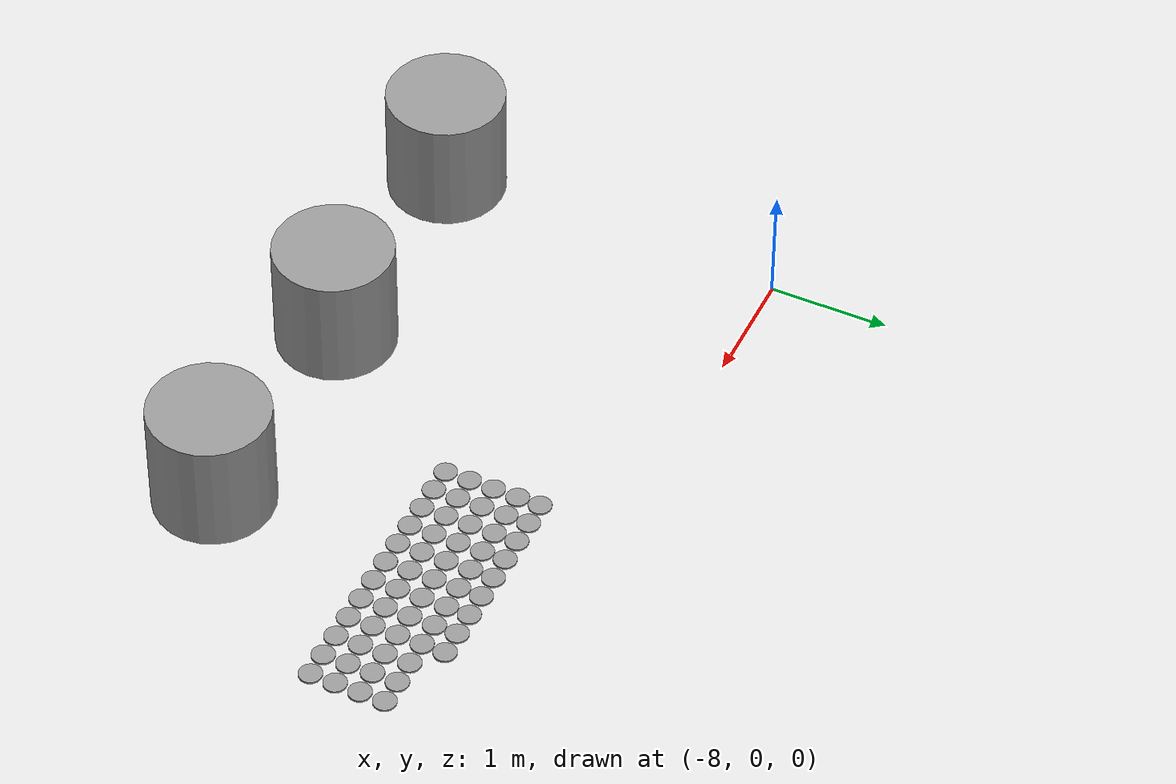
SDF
<sdf version="1.6">
 <world name="default">
  <model name="unit_cylinder_clone_500">
   <pose>-5 -1.5 0.008117 0 -0 0</pose>
   <link name="link">
    <inertial>
     <mass>1</mass>
     <inertia><ixx>0.145833</ixx><ixy>0</ixy><ixz>0</ixz><iyy>0.145833</iyy><iyz>0</iyz><izz>0.125</izz></inertia>
    </inertial>
    <collision name="collision">
     <geometry><cylinder><radius>0.0950718</radius><length>0.0162339</length></cylinder></geometry>
     <max_contacts>5</max_contacts>
    </collision>
    <visual name="visual">
     <geometry><cylinder><radius>0.0950718</radius><length>0.0162339</length></cylinder></geometry>
     <material>
      <script><name>Gazebo/Grey</name><uri>file://media/materials/scripts/gazebo.material</uri></script>
     </material>
    </visual>
   </link>
  </model>
  <model name="unit_cylinder_clone_501">
   <pose>-5 -1.29 0.008117 0 -0 0</pose>
   <link name="link">
    <inertial>
     <mass>1</mass>
     <inertia><ixx>0.145833</ixx><ixy>0</ixy><ixz>0</ixz><iyy>0.145833</iyy><iyz>0</iyz><izz>0.125</izz></inertia>
    </inertial>
    <collision name="collision">
     <geometry><cylinder><radius>0.0950718</radius><length>0.0162339</length></cylinder></geometry>
     <max_contacts>5</max_contacts>
    </collision>
    <visual name="visual">
     <geometry><cylinder><radius>0.0950718</radius><length>0.0162339</length></cylinder></geometry>
     <material>
      <script><name>Gazebo/Grey</name><uri>file://media/materials/scripts/gazebo.material</uri></script>
     </material>
    </visual>
   </link>
  </model>
  <model name="unit_cylinder_clone_502">
   <pose>-5 -1.08 0.008117 0 -0 0</pose>
   <link name="link">
    <inertial>
     <mass>1</mass>
     <inertia><ixx>0.145833</ixx><ixy>0</ixy><ixz>0</ixz><iyy>0.145833</iyy><iyz>0</iyz><izz>0.125</izz></inertia>
    </inertial>
    <collision name="collision">
     <geometry><cylinder><radius>0.0950718</radius><length>0.0162339</length></cylinder></geometry>
     <max_contacts>5</max_contacts>
    </collision>
    <visual name="visual">
     <geometry><cylinder><radius>0.0950718</radius><length>0.0162339</length></cylinder></geometry>
     <material>
      <script><name>Gazebo/Grey</name><uri>file://media/materials/scripts/gazebo.material</uri></script>
     </material>
    </visual>
   </link>
  </model>
  <model name="unit_cylinder_clone_503">
   <pose>-5 -0.87 0.008117 0 -0 0</pose>
   <link name="link">
    <inertial>
     <mass>1</mass>
     <inertia><ixx>0.145833</ixx><ixy>0</ixy><ixz>0</ixz><iyy>0.145833</iyy><iyz>0</iyz><izz>0.125</izz></inertia>
    </inertial>
    <collision name="collision">
     <geometry><cylinder><radius>0.0950718</radius><length>0.0162339</length></cylinder></geometry>
     <max_contacts>5</max_contacts>
    </collision>
    <visual name="visual">
     <geometry><cylinder><radius>0.0950718</radius><length>0.0162339</length></cylinder></geometry>
     <material>
      <script><name>Gazebo/Grey</name><uri>file://media/materials/scripts/gazebo.material</uri></script>
     </material>
    </visual>
   </link>
  </model>
  <model name="unit_cylinder_clone_504">
   <pose>-5 -0.675077 0.008117 -0 -0 -0</pose>
   <link name="link">
    <inertial>
     <mass>1</mass>
     <inertia><ixx>0.145833</ixx><ixy>0</ixy><ixz>0</ixz><iyy>0.145833</iyy><iyz>0</iyz><izz>0.125</izz></inertia>
    </inertial>
    <collision name="collision">
     <geometry><cylinder><radius>0.0950718</radius><length>0.0162339</length></cylinder></geometry>
     <max_contacts>5</max_contacts>
    </collision>
    <visual name="visual">
     <geometry><cylinder><radius>0.0950718</radius><length>0.0162339</length></cylinder></geometry>
     <material>
      <script><name>Gazebo/Grey</name><uri>file://media/materials/scripts/gazebo.material</uri></script>
     </material>
    </visual>
   </link>
  </model>
  <model name="unit_cylinder_clone_505">
   <pose>-4.79 -1.5 0.008117 0 -0 0</pose>
   <link name="link">
    <inertial>
     <mass>1</mass>
     <inertia><ixx>0.145833</ixx><ixy>0</ixy><ixz>0</ixz><iyy>0.145833</iyy><iyz>0</iyz><izz>0.125</izz></inertia>
    </inertial>
    <collision name="collision">
     <geometry><cylinder><radius>0.0950718</radius><length>0.0162339</length></cylinder></geometry>
     <max_contacts>5</max_contacts>
    </collision>
    <visual name="visual">
     <geometry><cylinder><radius>0.0950718</radius><length>0.0162339</length></cylinder></geometry>
     <material>
      <script><name>Gazebo/Grey</name><uri>file://media/materials/scripts/gazebo.material</uri></script>
     </material>
    </visual>
   </link>
  </model>
  <model name="unit_cylinder_clone_506">
   <pose>-4.79 -1.29 0.008117 0 -0 0</pose>
   <link name="link">
    <inertial>
     <mass>1</mass>
     <inertia><ixx>0.145833</ixx><ixy>0</ixy><ixz>0</ixz><iyy>0.145833</iyy><iyz>0</iyz><izz>0.125</izz></inertia>
    </inertial>
    <collision name="collision">
     <geometry><cylinder><radius>0.0950718</radius><length>0.0162339</length></cylinder></geometry>
     <max_contacts>5</max_contacts>
    </collision>
    <visual name="visual">
     <geometry><cylinder><radius>0.0950718</radius><length>0.0162339</length></cylinder></geometry>
     <material>
      <script><name>Gazebo/Grey</name><uri>file://media/materials/scripts/gazebo.material</uri></script>
     </material>
    </visual>
   </link>
  </model>
  <model name="unit_cylinder_clone_507">
   <pose>-4.79 -1.08 0.008117 0 -0 0</pose>
   <link name="link">
    <inertial>
     <mass>1</mass>
     <inertia><ixx>0.145833</ixx><ixy>0</ixy><ixz>0</ixz><iyy>0.145833</iyy><iyz>0</iyz><izz>0.125</izz></inertia>
    </inertial>
    <collision name="collision">
     <geometry><cylinder><radius>0.0950718</radius><length>0.0162339</length></cylinder></geometry>
     <max_contacts>5</max_contacts>
    </collision>
    <visual name="visual">
     <geometry><cylinder><radius>0.0950718</radius><length>0.0162339</length></cylinder></geometry>
     <material>
      <script><name>Gazebo/Grey</name><uri>file://media/materials/scripts/gazebo.material</uri></script>
     </material>
    </visual>
   </link>
  </model>
  <model name="unit_cylinder_clone_508">
   <pose>-4.79 -0.87 0.008117 0 -0 0</pose>
   <link name="link">
    <inertial>
     <mass>1</mass>
     <inertia><ixx>0.145833</ixx><ixy>0</ixy><ixz>0</ixz><iyy>0.145833</iyy><iyz>0</iyz><izz>0.125</izz></inertia>
    </inertial>
    <collision name="collision">
     <geometry><cylinder><radius>0.0950718</radius><length>0.0162339</length></cylinder></geometry>
     <max_contacts>5</max_contacts>
    </collision>
    <visual name="visual">
     <geometry><cylinder><radius>0.0950718</radius><length>0.0162339</length></cylinder></geometry>
     <material>
      <script><name>Gazebo/Grey</name><uri>file://media/materials/scripts/gazebo.material</uri></script>
     </material>
    </visual>
   </link>
  </model>
  <model name="unit_cylinder_clone_509">
   <pose>-4.79 -0.675077 0.008117 -0 -0 -0</pose>
   <link name="link">
    <inertial>
     <mass>1</mass>
     <inertia><ixx>0.145833</ixx><ixy>0</ixy><ixz>0</ixz><iyy>0.145833</iyy><iyz>0</iyz><izz>0.125</izz></inertia>
    </inertial>
    <collision name="collision">
     <geometry><cylinder><radius>0.0950718</radius><length>0.0162339</length></cylinder></geometry>
     <max_contacts>5</max_contacts>
    </collision>
    <visual name="visual">
     <geometry><cylinder><radius>0.0950718</radius><length>0.0162339</length></cylinder></geometry>
     <material>
      <script><name>Gazebo/Grey</name><uri>file://media/materials/scripts/gazebo.material</uri></script>
     </material>
    </visual>
   </link>
  </model>
  <model name="unit_cylinder_clone_510">
   <pose>-4.58 -1.5 0.008117 0 -0 0</pose>
   <link name="link">
    <inertial>
     <mass>1</mass>
     <inertia><ixx>0.145833</ixx><ixy>0</ixy><ixz>0</ixz><iyy>0.145833</iyy><iyz>0</iyz><izz>0.125</izz></inertia>
    </inertial>
    <collision name="collision">
     <geometry><cylinder><radius>0.0950718</radius><length>0.0162339</length></cylinder></geometry>
     <max_contacts>5</max_contacts>
    </collision>
    <visual name="visual">
     <geometry><cylinder><radius>0.0950718</radius><length>0.0162339</length></cylinder></geometry>
     <material>
      <script><name>Gazebo/Grey</name><uri>file://media/materials/scripts/gazebo.material</uri></script>
     </material>
    </visual>
   </link>
  </model>
  <model name="unit_cylinder_clone_511">
   <pose>-4.58 -1.29 0.008117 0 -0 0</pose>
   <link name="link">
    <inertial>
     <mass>1</mass>
     <inertia><ixx>0.145833</ixx><ixy>0</ixy><ixz>0</ixz><iyy>0.145833</iyy><iyz>0</iyz><izz>0.125</izz></inertia>
    </inertial>
    <collision name="collision">
     <geometry><cylinder><radius>0.0950718</radius><length>0.0162339</length></cylinder></geometry>
     <max_contacts>5</max_contacts>
    </collision>
    <visual name="visual">
     <geometry><cylinder><radius>0.0950718</radius><length>0.0162339</length></cylinder></geometry>
     <material>
      <script><name>Gazebo/Grey</name><uri>file://media/materials/scripts/gazebo.material</uri></script>
     </material>
    </visual>
   </link>
  </model>
  <model name="unit_cylinder_clone_512">
   <pose>-4.58 -1.08 0.008117 0 -0 0</pose>
   <link name="link">
    <inertial>
     <mass>1</mass>
     <inertia><ixx>0.145833</ixx><ixy>0</ixy><ixz>0</ixz><iyy>0.145833</iyy><iyz>0</iyz><izz>0.125</izz></inertia>
    </inertial>
    <collision name="collision">
     <geometry><cylinder><radius>0.0950718</radius><length>0.0162339</length></cylinder></geometry>
     <max_contacts>5</max_contacts>
    </collision>
    <visual name="visual">
     <geometry><cylinder><radius>0.0950718</radius><length>0.0162339</length></cylinder></geometry>
     <material>
      <script><name>Gazebo/Grey</name><uri>file://media/materials/scripts/gazebo.material</uri></script>
     </material>
    </visual>
   </link>
  </model>
  <model name="unit_cylinder_clone_513">
   <pose>-4.58 -0.87 0.008117 0 -0 0</pose>
   <link name="link">
    <inertial>
     <mass>1</mass>
     <inertia><ixx>0.145833</ixx><ixy>0</ixy><ixz>0</ixz><iyy>0.145833</iyy><iyz>0</iyz><izz>0.125</izz></inertia>
    </inertial>
    <collision name="collision">
     <geometry><cylinder><radius>0.0950718</radius><length>0.0162339</length></cylinder></geometry>
     <max_contacts>5</max_contacts>
    </collision>
    <visual name="visual">
     <geometry><cylinder><radius>0.0950718</radius><length>0.0162339</length></cylinder></geometry>
     <material>
      <script><name>Gazebo/Grey</name><uri>file://media/materials/scripts/gazebo.material</uri></script>
     </material>
    </visual>
   </link>
  </model>
  <model name="unit_cylinder_clone_514">
   <pose>-4.58 -0.675077 0.008117 -0 -0 -0</pose>
   <link name="link">
    <inertial>
     <mass>1</mass>
     <inertia><ixx>0.145833</ixx><ixy>0</ixy><ixz>0</ixz><iyy>0.145833</iyy><iyz>0</iyz><izz>0.125</izz></inertia>
    </inertial>
    <collision name="collision">
     <geometry><cylinder><radius>0.0950718</radius><length>0.0162339</length></cylinder></geometry>
     <max_contacts>5</max_contacts>
    </collision>
    <visual name="visual">
     <geometry><cylinder><radius>0.0950718</radius><length>0.0162339</length></cylinder></geometry>
     <material>
      <script><name>Gazebo/Grey</name><uri>file://media/materials/scripts/gazebo.material</uri></script>
     </material>
    </visual>
   </link>
  </model>
  <model name="unit_cylinder_clone_515">
   <pose>-4.37 -1.5 0.008117 0 -0 0</pose>
   <link name="link">
    <inertial>
     <mass>1</mass>
     <inertia><ixx>0.145833</ixx><ixy>0</ixy><ixz>0</ixz><iyy>0.145833</iyy><iyz>0</iyz><izz>0.125</izz></inertia>
    </inertial>
    <collision name="collision">
     <geometry><cylinder><radius>0.0950718</radius><length>0.0162339</length></cylinder></geometry>
     <max_contacts>5</max_contacts>
    </collision>
    <visual name="visual">
     <geometry><cylinder><radius>0.0950718</radius><length>0.0162339</length></cylinder></geometry>
     <material>
      <script><name>Gazebo/Grey</name><uri>file://media/materials/scripts/gazebo.material</uri></script>
     </material>
    </visual>
   </link>
  </model>
  <model name="unit_cylinder_clone_516">
   <pose>-4.37 -1.29 0.008117 0 -0 0</pose>
   <link name="link">
    <inertial>
     <mass>1</mass>
     <inertia><ixx>0.145833</ixx><ixy>0</ixy><ixz>0</ixz><iyy>0.145833</iyy><iyz>0</iyz><izz>0.125</izz></inertia>
    </inertial>
    <collision name="collision">
     <geometry><cylinder><radius>0.0950718</radius><length>0.0162339</length></cylinder></geometry>
     <max_contacts>5</max_contacts>
    </collision>
    <visual name="visual">
     <geometry><cylinder><radius>0.0950718</radius><length>0.0162339</length></cylinder></geometry>
     <material>
      <script><name>Gazebo/Grey</name><uri>file://media/materials/scripts/gazebo.material</uri></script>
     </material>
    </visual>
   </link>
  </model>
  <model name="unit_cylinder_clone_517">
   <pose>-4.37 -1.08 0.008117 0 -0 0</pose>
   <link name="link">
    <inertial>
     <mass>1</mass>
     <inertia><ixx>0.145833</ixx><ixy>0</ixy><ixz>0</ixz><iyy>0.145833</iyy><iyz>0</iyz><izz>0.125</izz></inertia>
    </inertial>
    <collision name="collision">
     <geometry><cylinder><radius>0.0950718</radius><length>0.0162339</length></cylinder></geometry>
     <max_contacts>5</max_contacts>
    </collision>
    <visual name="visual">
     <geometry><cylinder><radius>0.0950718</radius><length>0.0162339</length></cylinder></geometry>
     <material>
      <script><name>Gazebo/Grey</name><uri>file://media/materials/scripts/gazebo.material</uri></script>
     </material>
    </visual>
   </link>
  </model>
  <model name="unit_cylinder_clone_518">
   <pose>-4.37 -0.87 0.008117 0 -0 0</pose>
   <link name="link">
    <inertial>
     <mass>1</mass>
     <inertia><ixx>0.145833</ixx><ixy>0</ixy><ixz>0</ixz><iyy>0.145833</iyy><iyz>0</iyz><izz>0.125</izz></inertia>
    </inertial>
    <collision name="collision">
     <geometry><cylinder><radius>0.0950718</radius><length>0.0162339</length></cylinder></geometry>
     <max_contacts>5</max_contacts>
    </collision>
    <visual name="visual">
     <geometry><cylinder><radius>0.0950718</radius><length>0.0162339</length></cylinder></geometry>
     <material>
      <script><name>Gazebo/Grey</name><uri>file://media/materials/scripts/gazebo.material</uri></script>
     </material>
    </visual>
   </link>
  </model>
  <model name="unit_cylinder_clone_519">
   <pose>-4.37 -0.675077 0.008117 -0 -0 -0</pose>
   <link name="link">
    <inertial>
     <mass>1</mass>
     <inertia><ixx>0.145833</ixx><ixy>0</ixy><ixz>0</ixz><iyy>0.145833</iyy><iyz>0</iyz><izz>0.125</izz></inertia>
    </inertial>
    <collision name="collision">
     <geometry><cylinder><radius>0.0950718</radius><length>0.0162339</length></cylinder></geometry>
     <max_contacts>5</max_contacts>
    </collision>
    <visual name="visual">
     <geometry><cylinder><radius>0.0950718</radius><length>0.0162339</length></cylinder></geometry>
     <material>
      <script><name>Gazebo/Grey</name><uri>file://media/materials/scripts/gazebo.material</uri></script>
     </material>
    </visual>
   </link>
  </model>
  <model name="unit_cylinder_clone_520">
   <pose>-4.16 -1.5 0.008117 0 -0 0</pose>
   <link name="link">
    <inertial>
     <mass>1</mass>
     <inertia><ixx>0.145833</ixx><ixy>0</ixy><ixz>0</ixz><iyy>0.145833</iyy><iyz>0</iyz><izz>0.125</izz></inertia>
    </inertial>
    <collision name="collision">
     <geometry><cylinder><radius>0.0950718</radius><length>0.0162339</length></cylinder></geometry>
     <max_contacts>5</max_contacts>
    </collision>
    <visual name="visual">
     <geometry><cylinder><radius>0.0950718</radius><length>0.0162339</length></cylinder></geometry>
     <material>
      <script><name>Gazebo/Grey</name><uri>file://media/materials/scripts/gazebo.material</uri></script>
     </material>
    </visual>
   </link>
  </model>
  <model name="unit_cylinder_clone_521">
   <pose>-4.16 -1.29 0.008117 0 -0 0</pose>
   <link name="link">
    <inertial>
     <mass>1</mass>
     <inertia><ixx>0.145833</ixx><ixy>0</ixy><ixz>0</ixz><iyy>0.145833</iyy><iyz>0</iyz><izz>0.125</izz></inertia>
    </inertial>
    <collision name="collision">
     <geometry><cylinder><radius>0.0950718</radius><length>0.0162339</length></cylinder></geometry>
     <max_contacts>5</max_contacts>
    </collision>
    <visual name="visual">
     <geometry><cylinder><radius>0.0950718</radius><length>0.0162339</length></cylinder></geometry>
     <material>
      <script><name>Gazebo/Grey</name><uri>file://media/materials/scripts/gazebo.material</uri></script>
     </material>
    </visual>
   </link>
  </model>
  <model name="unit_cylinder_clone_522">
   <pose>-4.16 -1.08 0.008117 0 -0 0</pose>
   <link name="link">
    <inertial>
     <mass>1</mass>
     <inertia><ixx>0.145833</ixx><ixy>0</ixy><ixz>0</ixz><iyy>0.145833</iyy><iyz>0</iyz><izz>0.125</izz></inertia>
    </inertial>
    <collision name="collision">
     <geometry><cylinder><radius>0.0950718</radius><length>0.0162339</length></cylinder></geometry>
     <max_contacts>5</max_contacts>
    </collision>
    <visual name="visual">
     <geometry><cylinder><radius>0.0950718</radius><length>0.0162339</length></cylinder></geometry>
     <material>
      <script><name>Gazebo/Grey</name><uri>file://media/materials/scripts/gazebo.material</uri></script>
     </material>
    </visual>
   </link>
  </model>
  <model name="unit_cylinder_clone_523">
   <pose>-4.16 -0.87 0.008117 0 -0 0</pose>
   <link name="link">
    <inertial>
     <mass>1</mass>
     <inertia><ixx>0.145833</ixx><ixy>0</ixy><ixz>0</ixz><iyy>0.145833</iyy><iyz>0</iyz><izz>0.125</izz></inertia>
    </inertial>
    <collision name="collision">
     <geometry><cylinder><radius>0.0950718</radius><length>0.0162339</length></cylinder></geometry>
     <max_contacts>5</max_contacts>
    </collision>
    <visual name="visual">
     <geometry><cylinder><radius>0.0950718</radius><length>0.0162339</length></cylinder></geometry>
     <material>
      <script><name>Gazebo/Grey</name><uri>file://media/materials/scripts/gazebo.material</uri></script>
     </material>
    </visual>
   </link>
  </model>
  <model name="unit_cylinder_clone_524">
   <pose>-4.16 -0.675077 0.008117 -0 -0 -0</pose>
   <link name="link">
    <inertial>
     <mass>1</mass>
     <inertia><ixx>0.145833</ixx><ixy>0</ixy><ixz>0</ixz><iyy>0.145833</iyy><iyz>0</iyz><izz>0.125</izz></inertia>
    </inertial>
    <collision name="collision">
     <geometry><cylinder><radius>0.0950718</radius><length>0.0162339</length></cylinder></geometry>
     <max_contacts>5</max_contacts>
    </collision>
    <visual name="visual">
     <geometry><cylinder><radius>0.0950718</radius><length>0.0162339</length></cylinder></geometry>
     <material>
      <script><name>Gazebo/Grey</name><uri>file://media/materials/scripts/gazebo.material</uri></script>
     </material>
    </visual>
   </link>
  </model>
  <model name="unit_cylinder_clone_525">
   <pose>-3.95 -1.5 0.008117 0 -0 0</pose>
   <link name="link">
    <inertial>
     <mass>1</mass>
     <inertia><ixx>0.145833</ixx><ixy>0</ixy><ixz>0</ixz><iyy>0.145833</iyy><iyz>0</iyz><izz>0.125</izz></inertia>
    </inertial>
    <collision name="collision">
     <geometry><cylinder><radius>0.0950718</radius><length>0.0162339</length></cylinder></geometry>
     <max_contacts>5</max_contacts>
    </collision>
    <visual name="visual">
     <geometry><cylinder><radius>0.0950718</radius><length>0.0162339</length></cylinder></geometry>
     <material>
      <script><name>Gazebo/Grey</name><uri>file://media/materials/scripts/gazebo.material</uri></script>
     </material>
    </visual>
   </link>
  </model>
  <model name="unit_cylinder_clone_526">
   <pose>-3.95 -1.29 0.008117 0 -0 0</pose>
   <link name="link">
    <inertial>
     <mass>1</mass>
     <inertia><ixx>0.145833</ixx><ixy>0</ixy><ixz>0</ixz><iyy>0.145833</iyy><iyz>0</iyz><izz>0.125</izz></inertia>
    </inertial>
    <collision name="collision">
     <geometry><cylinder><radius>0.0950718</radius><length>0.0162339</length></cylinder></geometry>
     <max_contacts>5</max_contacts>
    </collision>
    <visual name="visual">
     <geometry><cylinder><radius>0.0950718</radius><length>0.0162339</length></cylinder></geometry>
     <material>
      <script><name>Gazebo/Grey</name><uri>file://media/materials/scripts/gazebo.material</uri></script>
     </material>
    </visual>
   </link>
  </model>
  <model name="unit_cylinder_clone_527">
   <pose>-3.95 -1.08 0.008117 0 -0 0</pose>
   <link name="link">
    <inertial>
     <mass>1</mass>
     <inertia><ixx>0.145833</ixx><ixy>0</ixy><ixz>0</ixz><iyy>0.145833</iyy><iyz>0</iyz><izz>0.125</izz></inertia>
    </inertial>
    <collision name="collision">
     <geometry><cylinder><radius>0.0950718</radius><length>0.0162339</length></cylinder></geometry>
     <max_contacts>5</max_contacts>
    </collision>
    <visual name="visual">
     <geometry><cylinder><radius>0.0950718</radius><length>0.0162339</length></cylinder></geometry>
     <material>
      <script><name>Gazebo/Grey</name><uri>file://media/materials/scripts/gazebo.material</uri></script>
     </material>
    </visual>
   </link>
  </model>
  <model name="unit_cylinder_clone_528">
   <pose>-3.95 -0.87 0.008117 0 -0 0</pose>
   <link name="link">
    <inertial>
     <mass>1</mass>
     <inertia><ixx>0.145833</ixx><ixy>0</ixy><ixz>0</ixz><iyy>0.145833</iyy><iyz>0</iyz><izz>0.125</izz></inertia>
    </inertial>
    <collision name="collision">
     <geometry><cylinder><radius>0.0950718</radius><length>0.0162339</length></cylinder></geometry>
     <max_contacts>5</max_contacts>
    </collision>
    <visual name="visual">
     <geometry><cylinder><radius>0.0950718</radius><length>0.0162339</length></cylinder></geometry>
     <material>
      <script><name>Gazebo/Grey</name><uri>file://media/materials/scripts/gazebo.material</uri></script>
     </material>
    </visual>
   </link>
  </model>
  <model name="unit_cylinder_clone_529">
   <pose>-3.95 -0.675077 0.008117 -0 -0 -0</pose>
   <link name="link">
    <inertial>
     <mass>1</mass>
     <inertia><ixx>0.145833</ixx><ixy>0</ixy><ixz>0</ixz><iyy>0.145833</iyy><iyz>0</iyz><izz>0.125</izz></inertia>
    </inertial>
    <collision name="collision">
     <geometry><cylinder><radius>0.0950718</radius><length>0.0162339</length></cylinder></geometry>
     <max_contacts>5</max_contacts>
    </collision>
    <visual name="visual">
     <geometry><cylinder><radius>0.0950718</radius><length>0.0162339</length></cylinder></geometry>
     <material>
      <script><name>Gazebo/Grey</name><uri>file://media/materials/scripts/gazebo.material</uri></script>
     </material>
    </visual>
   </link>
  </model>
  <model name="unit_cylinder_clone_530">
   <pose>-3.74 -1.5 0.008117 0 -0 0</pose>
   <link name="link">
    <inertial>
     <mass>1</mass>
     <inertia><ixx>0.145833</ixx><ixy>0</ixy><ixz>0</ixz><iyy>0.145833</iyy><iyz>0</iyz><izz>0.125</izz></inertia>
    </inertial>
    <collision name="collision">
     <geometry><cylinder><radius>0.0950718</radius><length>0.0162339</length></cylinder></geometry>
     <max_contacts>5</max_contacts>
    </collision>
    <visual name="visual">
     <geometry><cylinder><radius>0.0950718</radius><length>0.0162339</length></cylinder></geometry>
     <material>
      <script><name>Gazebo/Grey</name><uri>file://media/materials/scripts/gazebo.material</uri></script>
     </material>
    </visual>
   </link>
  </model>
  <model name="unit_cylinder_clone_531">
   <pose>-3.74 -1.29 0.008117 0 -0 0</pose>
   <link name="link">
    <inertial>
     <mass>1</mass>
     <inertia><ixx>0.145833</ixx><ixy>0</ixy><ixz>0</ixz><iyy>0.145833</iyy><iyz>0</iyz><izz>0.125</izz></inertia>
    </inertial>
    <collision name="collision">
     <geometry><cylinder><radius>0.0950718</radius><length>0.0162339</length></cylinder></geometry>
     <max_contacts>5</max_contacts>
    </collision>
    <visual name="visual">
     <geometry><cylinder><radius>0.0950718</radius><length>0.0162339</length></cylinder></geometry>
     <material>
      <script><name>Gazebo/Grey</name><uri>file://media/materials/scripts/gazebo.material</uri></script>
     </material>
    </visual>
   </link>
  </model>
  <model name="unit_cylinder_clone_532">
   <pose>-3.74 -1.08 0.008117 0 -0 0</pose>
   <link name="link">
    <inertial>
     <mass>1</mass>
     <inertia><ixx>0.145833</ixx><ixy>0</ixy><ixz>0</ixz><iyy>0.145833</iyy><iyz>0</iyz><izz>0.125</izz></inertia>
    </inertial>
    <collision name="collision">
     <geometry><cylinder><radius>0.0950718</radius><length>0.0162339</length></cylinder></geometry>
     <max_contacts>5</max_contacts>
    </collision>
    <visual name="visual">
     <geometry><cylinder><radius>0.0950718</radius><length>0.0162339</length></cylinder></geometry>
     <material>
      <script><name>Gazebo/Grey</name><uri>file://media/materials/scripts/gazebo.material</uri></script>
     </material>
    </visual>
   </link>
  </model>
  <model name="unit_cylinder_clone_533">
   <pose>-3.74 -0.87 0.008117 0 -0 0</pose>
   <link name="link">
    <inertial>
     <mass>1</mass>
     <inertia><ixx>0.145833</ixx><ixy>0</ixy><ixz>0</ixz><iyy>0.145833</iyy><iyz>0</iyz><izz>0.125</izz></inertia>
    </inertial>
    <collision name="collision">
     <geometry><cylinder><radius>0.0950718</radius><length>0.0162339</length></cylinder></geometry>
     <max_contacts>5</max_contacts>
    </collision>
    <visual name="visual">
     <geometry><cylinder><radius>0.0950718</radius><length>0.0162339</length></cylinder></geometry>
     <material>
      <script><name>Gazebo/Grey</name><uri>file://media/materials/scripts/gazebo.material</uri></script>
     </material>
    </visual>
   </link>
  </model>
  <model name="unit_cylinder_clone_534">
   <pose>-3.74 -0.675077 0.008117 -0 -0 -0</pose>
   <link name="link">
    <inertial>
     <mass>1</mass>
     <inertia><ixx>0.145833</ixx><ixy>0</ixy><ixz>0</ixz><iyy>0.145833</iyy><iyz>0</iyz><izz>0.125</izz></inertia>
    </inertial>
    <collision name="collision">
     <geometry><cylinder><radius>0.0950718</radius><length>0.0162339</length></cylinder></geometry>
     <max_contacts>5</max_contacts>
    </collision>
    <visual name="visual">
     <geometry><cylinder><radius>0.0950718</radius><length>0.0162339</length></cylinder></geometry>
     <material>
      <script><name>Gazebo/Grey</name><uri>file://media/materials/scripts/gazebo.material</uri></script>
     </material>
    </visual>
   </link>
  </model>
  <model name="unit_cylinder_clone_535">
   <pose>-3.53 -1.5 0.008117 0 -0 0</pose>
   <link name="link">
    <inertial>
     <mass>1</mass>
     <inertia><ixx>0.145833</ixx><ixy>0</ixy><ixz>0</ixz><iyy>0.145833</iyy><iyz>0</iyz><izz>0.125</izz></inertia>
    </inertial>
    <collision name="collision">
     <geometry><cylinder><radius>0.0950718</radius><length>0.0162339</length></cylinder></geometry>
     <max_contacts>5</max_contacts>
    </collision>
    <visual name="visual">
     <geometry><cylinder><radius>0.0950718</radius><length>0.0162339</length></cylinder></geometry>
     <material>
      <script><name>Gazebo/Grey</name><uri>file://media/materials/scripts/gazebo.material</uri></script>
     </material>
    </visual>
   </link>
  </model>
  <model name="unit_cylinder_clone_536">
   <pose>-3.53 -1.29 0.008117 0 -0 0</pose>
   <link name="link">
    <inertial>
     <mass>1</mass>
     <inertia><ixx>0.145833</ixx><ixy>0</ixy><ixz>0</ixz><iyy>0.145833</iyy><iyz>0</iyz><izz>0.125</izz></inertia>
    </inertial>
    <collision name="collision">
     <geometry><cylinder><radius>0.0950718</radius><length>0.0162339</length></cylinder></geometry>
     <max_contacts>5</max_contacts>
    </collision>
    <visual name="visual">
     <geometry><cylinder><radius>0.0950718</radius><length>0.0162339</length></cylinder></geometry>
     <material>
      <script><name>Gazebo/Grey</name><uri>file://media/materials/scripts/gazebo.material</uri></script>
     </material>
    </visual>
   </link>
  </model>
  <model name="unit_cylinder_clone_537">
   <pose>-3.53 -1.08 0.008117 0 -0 0</pose>
   <link name="link">
    <inertial>
     <mass>1</mass>
     <inertia><ixx>0.145833</ixx><ixy>0</ixy><ixz>0</ixz><iyy>0.145833</iyy><iyz>0</iyz><izz>0.125</izz></inertia>
    </inertial>
    <collision name="collision">
     <geometry><cylinder><radius>0.0950718</radius><length>0.0162339</length></cylinder></geometry>
     <max_contacts>5</max_contacts>
    </collision>
    <visual name="visual">
     <geometry><cylinder><radius>0.0950718</radius><length>0.0162339</length></cylinder></geometry>
     <material>
      <script><name>Gazebo/Grey</name><uri>file://media/materials/scripts/gazebo.material</uri></script>
     </material>
    </visual>
   </link>
  </model>
  <model name="unit_cylinder_clone_538">
   <pose>-3.53 -0.87 0.008117 0 -0 0</pose>
   <link name="link">
    <inertial>
     <mass>1</mass>
     <inertia><ixx>0.145833</ixx><ixy>0</ixy><ixz>0</ixz><iyy>0.145833</iyy><iyz>0</iyz><izz>0.125</izz></inertia>
    </inertial>
    <collision name="collision">
     <geometry><cylinder><radius>0.0950718</radius><length>0.0162339</length></cylinder></geometry>
     <max_contacts>5</max_contacts>
    </collision>
    <visual name="visual">
     <geometry><cylinder><radius>0.0950718</radius><length>0.0162339</length></cylinder></geometry>
     <material>
      <script><name>Gazebo/Grey</name><uri>file://media/materials/scripts/gazebo.material</uri></script>
     </material>
    </visual>
   </link>
  </model>
  <model name="unit_cylinder_clone_539">
   <pose>-3.53 -0.675077 0.008117 -0 -0 -0</pose>
   <link name="link">
    <inertial>
     <mass>1</mass>
     <inertia><ixx>0.145833</ixx><ixy>0</ixy><ixz>0</ixz><iyy>0.145833</iyy><iyz>0</iyz><izz>0.125</izz></inertia>
    </inertial>
    <collision name="collision">
     <geometry><cylinder><radius>0.0950718</radius><length>0.0162339</length></cylinder></geometry>
     <max_contacts>5</max_contacts>
    </collision>
    <visual name="visual">
     <geometry><cylinder><radius>0.0950718</radius><length>0.0162339</length></cylinder></geometry>
     <material>
      <script><name>Gazebo/Grey</name><uri>file://media/materials/scripts/gazebo.material</uri></script>
     </material>
    </visual>
   </link>
  </model>
  <model name="unit_cylinder_clone_540">
   <pose>-3.32 -1.5 0.008117 0 -0 0</pose>
   <link name="link">
    <inertial>
     <mass>1</mass>
     <inertia><ixx>0.145833</ixx><ixy>0</ixy><ixz>0</ixz><iyy>0.145833</iyy><iyz>0</iyz><izz>0.125</izz></inertia>
    </inertial>
    <collision name="collision">
     <geometry><cylinder><radius>0.0950718</radius><length>0.0162339</length></cylinder></geometry>
     <max_contacts>5</max_contacts>
    </collision>
    <visual name="visual">
     <geometry><cylinder><radius>0.0950718</radius><length>0.0162339</length></cylinder></geometry>
     <material>
      <script><name>Gazebo/Grey</name><uri>file://media/materials/scripts/gazebo.material</uri></script>
     </material>
    </visual>
   </link>
  </model>
  <model name="unit_cylinder_clone_541">
   <pose>-3.32 -1.29 0.008117 0 -0 0</pose>
   <link name="link">
    <inertial>
     <mass>1</mass>
     <inertia><ixx>0.145833</ixx><ixy>0</ixy><ixz>0</ixz><iyy>0.145833</iyy><iyz>0</iyz><izz>0.125</izz></inertia>
    </inertial>
    <collision name="collision">
     <geometry><cylinder><radius>0.0950718</radius><length>0.0162339</length></cylinder></geometry>
     <max_contacts>5</max_contacts>
    </collision>
    <visual name="visual">
     <geometry><cylinder><radius>0.0950718</radius><length>0.0162339</length></cylinder></geometry>
     <material>
      <script><name>Gazebo/Grey</name><uri>file://media/materials/scripts/gazebo.material</uri></script>
     </material>
    </visual>
   </link>
  </model>
  <model name="unit_cylinder_clone_542">
   <pose>-3.32 -1.08 0.008117 0 -0 0</pose>
   <link name="link">
    <inertial>
     <mass>1</mass>
     <inertia><ixx>0.145833</ixx><ixy>0</ixy><ixz>0</ixz><iyy>0.145833</iyy><iyz>0</iyz><izz>0.125</izz></inertia>
    </inertial>
    <collision name="collision">
     <geometry><cylinder><radius>0.0950718</radius><length>0.0162339</length></cylinder></geometry>
     <max_contacts>5</max_contacts>
    </collision>
    <visual name="visual">
     <geometry><cylinder><radius>0.0950718</radius><length>0.0162339</length></cylinder></geometry>
     <material>
      <script><name>Gazebo/Grey</name><uri>file://media/materials/scripts/gazebo.material</uri></script>
     </material>
    </visual>
   </link>
  </model>
  <model name="unit_cylinder_clone_543">
   <pose>-3.32 -0.87 0.008117 0 -0 0</pose>
   <link name="link">
    <inertial>
     <mass>1</mass>
     <inertia><ixx>0.145833</ixx><ixy>0</ixy><ixz>0</ixz><iyy>0.145833</iyy><iyz>0</iyz><izz>0.125</izz></inertia>
    </inertial>
    <collision name="collision">
     <geometry><cylinder><radius>0.0950718</radius><length>0.0162339</length></cylinder></geometry>
     <max_contacts>5</max_contacts>
    </collision>
    <visual name="visual">
     <geometry><cylinder><radius>0.0950718</radius><length>0.0162339</length></cylinder></geometry>
     <material>
      <script><name>Gazebo/Grey</name><uri>file://media/materials/scripts/gazebo.material</uri></script>
     </material>
    </visual>
   </link>
  </model>
  <model name="unit_cylinder_clone_544">
   <pose>-3.32 -0.675077 0.008117 -0 -0 -0</pose>
   <link name="link">
    <inertial>
     <mass>1</mass>
     <inertia><ixx>0.145833</ixx><ixy>0</ixy><ixz>0</ixz><iyy>0.145833</iyy><iyz>0</iyz><izz>0.125</izz></inertia>
    </inertial>
    <collision name="collision">
     <geometry><cylinder><radius>0.0950718</radius><length>0.0162339</length></cylinder></geometry>
     <max_contacts>5</max_contacts>
    </collision>
    <visual name="visual">
     <geometry><cylinder><radius>0.0950718</radius><length>0.0162339</length></cylinder></geometry>
     <material>
      <script><name>Gazebo/Grey</name><uri>file://media/materials/scripts/gazebo.material</uri></script>
     </material>
    </visual>
   </link>
  </model>
  <model name="unit_cylinder_clone_545">
   <pose>-3.11 -1.5 0.008117 0 -0 0</pose>
   <link name="link">
    <inertial>
     <mass>1</mass>
     <inertia><ixx>0.145833</ixx><ixy>0</ixy><ixz>0</ixz><iyy>0.145833</iyy><iyz>0</iyz><izz>0.125</izz></inertia>
    </inertial>
    <collision name="collision">
     <geometry><cylinder><radius>0.0950718</radius><length>0.0162339</length></cylinder></geometry>
     <max_contacts>5</max_contacts>
    </collision>
    <visual name="visual">
     <geometry><cylinder><radius>0.0950718</radius><length>0.0162339</length></cylinder></geometry>
     <material>
      <script><name>Gazebo/Grey</name><uri>file://media/materials/scripts/gazebo.material</uri></script>
     </material>
    </visual>
   </link>
  </model>
  <model name="unit_cylinder_clone_546">
   <pose>-3.11 -1.29 0.008117 0 -0 0</pose>
   <link name="link">
    <inertial>
     <mass>1</mass>
     <inertia><ixx>0.145833</ixx><ixy>0</ixy><ixz>0</ixz><iyy>0.145833</iyy><iyz>0</iyz><izz>0.125</izz></inertia>
    </inertial>
    <collision name="collision">
     <geometry><cylinder><radius>0.0950718</radius><length>0.0162339</length></cylinder></geometry>
     <max_contacts>5</max_contacts>
    </collision>
    <visual name="visual">
     <geometry><cylinder><radius>0.0950718</radius><length>0.0162339</length></cylinder></geometry>
     <material>
      <script><name>Gazebo/Grey</name><uri>file://media/materials/scripts/gazebo.material</uri></script>
     </material>
    </visual>
   </link>
  </model>
  <model name="unit_cylinder_clone_547">
   <pose>-3.11 -1.08 0.008117 0 -0 0</pose>
   <link name="link">
    <inertial>
     <mass>1</mass>
     <inertia><ixx>0.145833</ixx><ixy>0</ixy><ixz>0</ixz><iyy>0.145833</iyy><iyz>0</iyz><izz>0.125</izz></inertia>
    </inertial>
    <collision name="collision">
     <geometry><cylinder><radius>0.0950718</radius><length>0.0162339</length></cylinder></geometry>
     <max_contacts>5</max_contacts>
    </collision>
    <visual name="visual">
     <geometry><cylinder><radius>0.0950718</radius><length>0.0162339</length></cylinder></geometry>
     <material>
      <script><name>Gazebo/Grey</name><uri>file://media/materials/scripts/gazebo.material</uri></script>
     </material>
    </visual>
   </link>
  </model>
  <model name="unit_cylinder_clone_548">
   <pose>-3.11 -0.87 0.008117 0 -0 0</pose>
   <link name="link">
    <inertial>
     <mass>1</mass>
     <inertia><ixx>0.145833</ixx><ixy>0</ixy><ixz>0</ixz><iyy>0.145833</iyy><iyz>0</iyz><izz>0.125</izz></inertia>
    </inertial>
    <collision name="collision">
     <geometry><cylinder><radius>0.0950718</radius><length>0.0162339</length></cylinder></geometry>
     <max_contacts>5</max_contacts>
    </collision>
    <visual name="visual">
     <geometry><cylinder><radius>0.0950718</radius><length>0.0162339</length></cylinder></geometry>
     <material>
      <script><name>Gazebo/Grey</name><uri>file://media/materials/scripts/gazebo.material</uri></script>
     </material>
    </visual>
   </link>
  </model>
  <model name="unit_cylinder_clone_550">
   <pose>-2.9 -1.5 0.008117 0 -0 0</pose>
   <link name="link">
    <inertial>
     <mass>1</mass>
     <inertia><ixx>0.145833</ixx><ixy>0</ixy><ixz>0</ixz><iyy>0.145833</iyy><iyz>0</iyz><izz>0.125</izz></inertia>
    </inertial>
    <collision name="collision">
     <geometry><cylinder><radius>0.0950718</radius><length>0.0162339</length></cylinder></geometry>
     <max_contacts>5</max_contacts>
    </collision>
    <visual name="visual">
     <geometry><cylinder><radius>0.0950718</radius><length>0.0162339</length></cylinder></geometry>
     <material>
      <script><name>Gazebo/Grey</name><uri>file://media/materials/scripts/gazebo.material</uri></script>
     </material>
    </visual>
   </link>
  </model>
  <model name="unit_cylinder_clone_551">
   <pose>-2.9 -1.29 0.008117 0 -0 0</pose>
   <link name="link">
    <inertial>
     <mass>1</mass>
     <inertia><ixx>0.145833</ixx><ixy>0</ixy><ixz>0</ixz><iyy>0.145833</iyy><iyz>0</iyz><izz>0.125</izz></inertia>
    </inertial>
    <collision name="collision">
     <geometry><cylinder><radius>0.0950718</radius><length>0.0162339</length></cylinder></geometry>
     <max_contacts>5</max_contacts>
    </collision>
    <visual name="visual">
     <geometry><cylinder><radius>0.0950718</radius><length>0.0162339</length></cylinder></geometry>
     <material>
      <script><name>Gazebo/Grey</name><uri>file://media/materials/scripts/gazebo.material</uri></script>
     </material>
    </visual>
   </link>
  </model>
  <model name="unit_cylinder_clone_552">
   <pose>-2.9 -1.08 0.008117 0 -0 0</pose>
   <link name="link">
    <inertial>
     <mass>1</mass>
     <inertia><ixx>0.145833</ixx><ixy>0</ixy><ixz>0</ixz><iyy>0.145833</iyy><iyz>0</iyz><izz>0.125</izz></inertia>
    </inertial>
    <collision name="collision">
     <geometry><cylinder><radius>0.0950718</radius><length>0.0162339</length></cylinder></geometry>
     <max_contacts>5</max_contacts>
    </collision>
    <visual name="visual">
     <geometry><cylinder><radius>0.0950718</radius><length>0.0162339</length></cylinder></geometry>
     <material>
      <script><name>Gazebo/Grey</name><uri>file://media/materials/scripts/gazebo.material</uri></script>
     </material>
    </visual>
   </link>
  </model>
  <model name="unit_cylinder_clone_553">
   <pose>-2.9 -0.87 0.008117 0 -0 0</pose>
   <link name="link">
    <inertial>
     <mass>1</mass>
     <inertia><ixx>0.145833</ixx><ixy>0</ixy><ixz>0</ixz><iyy>0.145833</iyy><iyz>0</iyz><izz>0.125</izz></inertia>
    </inertial>
    <collision name="collision">
     <geometry><cylinder><radius>0.0950718</radius><length>0.0162339</length></cylinder></geometry>
     <max_contacts>5</max_contacts>
    </collision>
    <visual name="visual">
     <geometry><cylinder><radius>0.0950718</radius><length>0.0162339</length></cylinder></geometry>
     <material>
      <script><name>Gazebo/Grey</name><uri>file://media/materials/scripts/gazebo.material</uri></script>
     </material>
    </visual>
   </link>
  </model>
  <model name="unit_cylinder_clone_555">
   <pose>-2.69 -1.5 0.008117 0 -0 0</pose>
   <link name="link">
    <inertial>
     <mass>1</mass>
     <inertia><ixx>0.145833</ixx><ixy>0</ixy><ixz>0</ixz><iyy>0.145833</iyy><iyz>0</iyz><izz>0.125</izz></inertia>
    </inertial>
    <collision name="collision">
     <geometry><cylinder><radius>0.0950718</radius><length>0.0162339</length></cylinder></geometry>
     <max_contacts>5</max_contacts>
    </collision>
    <visual name="visual">
     <geometry><cylinder><radius>0.0950718</radius><length>0.0162339</length></cylinder></geometry>
     <material>
      <script><name>Gazebo/Grey</name><uri>file://media/materials/scripts/gazebo.material</uri></script>
     </material>
    </visual>
   </link>
  </model>
  <model name="unit_cylinder_clone_556">
   <pose>-2.69 -1.29 0.008117 0 -0 0</pose>
   <link name="link">
    <inertial>
     <mass>1</mass>
     <inertia><ixx>0.145833</ixx><ixy>0</ixy><ixz>0</ixz><iyy>0.145833</iyy><iyz>0</iyz><izz>0.125</izz></inertia>
    </inertial>
    <collision name="collision">
     <geometry><cylinder><radius>0.0950718</radius><length>0.0162339</length></cylinder></geometry>
     <max_contacts>5</max_contacts>
    </collision>
    <visual name="visual">
     <geometry><cylinder><radius>0.0950718</radius><length>0.0162339</length></cylinder></geometry>
     <material>
      <script><name>Gazebo/Grey</name><uri>file://media/materials/scripts/gazebo.material</uri></script>
     </material>
    </visual>
   </link>
  </model>
  <model name="unit_cylinder_clone_557">
   <pose>-2.69 -1.08 0.008117 0 -0 0</pose>
   <link name="link">
    <inertial>
     <mass>1</mass>
     <inertia><ixx>0.145833</ixx><ixy>0</ixy><ixz>0</ixz><iyy>0.145833</iyy><iyz>0</iyz><izz>0.125</izz></inertia>
    </inertial>
    <collision name="collision">
     <geometry><cylinder><radius>0.0950718</radius><length>0.0162339</length></cylinder></geometry>
     <max_contacts>5</max_contacts>
    </collision>
    <visual name="visual">
     <geometry><cylinder><radius>0.0950718</radius><length>0.0162339</length></cylinder></geometry>
     <material>
      <script><name>Gazebo/Grey</name><uri>file://media/materials/scripts/gazebo.material</uri></script>
     </material>
    </visual>
   </link>
  </model>
  <model name="unit_cylinder_clone_558">
   <pose>-2.69 -0.87 0.008117 0 -0 0</pose>
   <link name="link">
    <inertial>
     <mass>1</mass>
     <inertia><ixx>0.145833</ixx><ixy>0</ixy><ixz>0</ixz><iyy>0.145833</iyy><iyz>0</iyz><izz>0.125</izz></inertia>
    </inertial>
    <collision name="collision">
     <geometry><cylinder><radius>0.0950718</radius><length>0.0162339</length></cylinder></geometry>
     <max_contacts>5</max_contacts>
    </collision>
    <visual name="visual">
     <geometry><cylinder><radius>0.0950718</radius><length>0.0162339</length></cylinder></geometry>
     <material>
      <script><name>Gazebo/Grey</name><uri>file://media/materials/scripts/gazebo.material</uri></script>
     </material>
    </visual>
   </link>
  </model>
  <model name="unit_cylinder_14">
   <pose>-3.98491 -3.01902 0.5 0 -0 0</pose>
   <link name="link">
    <inertial>
     <mass>1</mass>
     <inertia><ixx>0.145833</ixx><ixy>0</ixy><ixz>0</ixz><iyy>0.145833</iyy><iyz>0</iyz><izz>0.125</izz></inertia>
    </inertial>
    <collision name="collision">
     <geometry><cylinder><radius>0.5</radius><length>1</length></cylinder></geometry>
    </collision>
    <visual name="visual">
     <geometry><cylinder><radius>0.5</radius><length>1</length></cylinder></geometry>
     <material>
      <script><name>Gazebo/Grey</name><uri>file://media/materials/scripts/gazebo.material</uri></script>
     </material>
    </visual>
   </link>
  </model>
  <model name="unit_cylinder_15">
   <pose>-5.9763 -2.96745 0.499993 -3e-06 -4e-06 -0</pose>
   <link name="link">
    <inertial>
     <mass>1</mass>
     <inertia><ixx>0.145833</ixx><ixy>0</ixy><ixz>0</ixz><iyy>0.145833</iyy><iyz>0</iyz><izz>0.125</izz></inertia>
    </inertial>
    <collision name="collision">
     <geometry><cylinder><radius>0.5</radius><length>1</length></cylinder></geometry>
    </collision>
    <visual name="visual">
     <geometry><cylinder><radius>0.5</radius><length>1</length></cylinder></geometry>
     <material>
      <script><name>Gazebo/Grey</name><uri>file://media/materials/scripts/gazebo.material</uri></script>
     </material>
    </visual>
   </link>
  </model>
  <model name="unit_cylinder_16">
   <pose>-7.98381 -2.95973 0.5 0 -0 0</pose>
   <link name="link">
    <inertial>
     <mass>1</mass>
     <inertia><ixx>0.145833</ixx><ixy>0</ixy><ixz>0</ixz><iyy>0.145833</iyy><iyz>0</iyz><izz>0.125</izz></inertia>
    </inertial>
    <collision name="collision">
     <geometry><cylinder><radius>0.5</radius><length>1</length></cylinder></geometry>
    </collision>
    <visual name="visual">
     <geometry><cylinder><radius>0.5</radius><length>1</length></cylinder></geometry>
     <material>
      <script><name>Gazebo/Grey</name><uri>file://media/materials/scripts/gazebo.material</uri></script>
     </material>
    </visual>
   </link>
  </model>
 </world>
</sdf>
